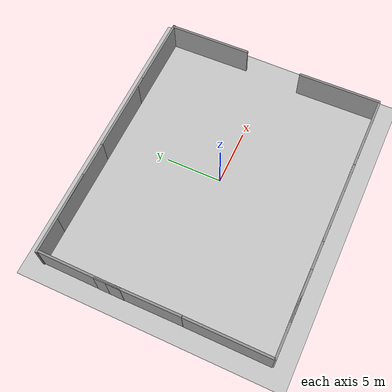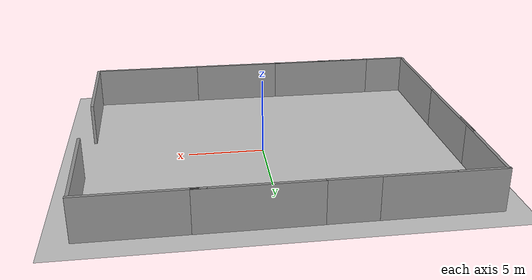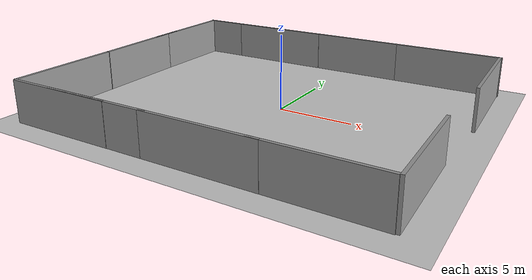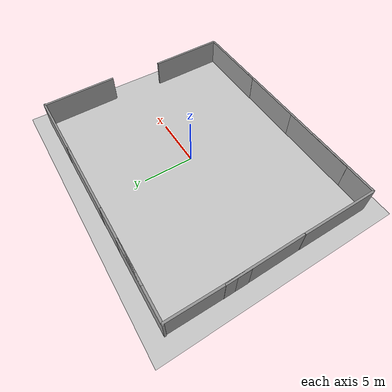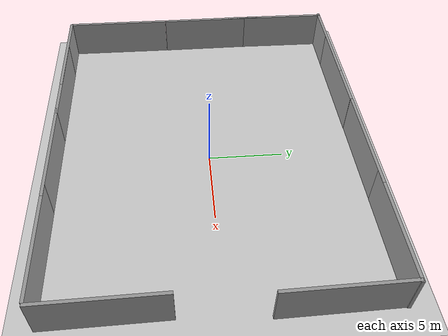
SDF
<sdf version="1.6">
 <world name="default">
  <light name="sun" type="directional">
   <pose>0 0 10 0 -0 0</pose>
   <diffuse>0.8 0.8 0.8 1</diffuse>
   <specular>0.1 0.1 0.1 1</specular>
   <attenuation>
    <range>1000</range>
    <constant>0.9</constant>
    <linear>0.01</linear>
    <quadratic>0.001</quadratic>
   </attenuation>
   <direction>-0.5 0.5 -1</direction>
  </light>
  <model name="ground_plane">
   <static>1</static>
   <link name="link">
    <collision name="collision">
     <geometry><plane><normal>0 0 1</normal><size>100 100</size></plane></geometry>
     <surface><friction><ode><mu>100</mu><mu2>50</mu2></ode></friction></surface>
    </collision>
    <visual name="visual">
     <cast_shadows>0</cast_shadows>
     <geometry><plane><normal>0 0 1</normal><size>100 100</size></plane></geometry>
     <material>
      <script><uri>file://media/materials/scripts/gazebo.material</uri><name>Gazebo/Grey</name></script>
     </material>
    </visual>
   </link>
  </model>
  <gravity>0 0 -9.8</gravity>
  <magnetic_field>6e-06 2.3e-05 -4.2e-05</magnetic_field>
  <atmosphere type="adiabatic"/>
  <physics name="default_physics" default="0" type="ode">
   <max_step_size>0.001</max_step_size>
   <real_time_factor>1</real_time_factor>
   <real_time_update_rate>1000</real_time_update_rate>
  </physics>
  <scene>
   <ambient>0.4 0.4 0.4 1</ambient>
   <background>0.7 0.7 0.7 1</background>
   <shadows>1</shadows>
   <sky><clouds><speed>100</speed></clouds></sky>
  </scene>
  <spherical_coordinates>
   <surface_model>EARTH_WGS84</surface_model>
   <latitude_deg>0</latitude_deg>
   <longitude_deg>0</longitude_deg>
   <elevation>0</elevation>
   <heading_deg>0</heading_deg>
  </spherical_coordinates>
  <light name="user_spot_light_0" type="spot">
   <pose>-6.13186 -0.973025 1 0 -0 0</pose>
   <diffuse>0.5 0.5 0.5 1</diffuse>
   <specular>0.1 0.1 0.1 1</specular>
   <direction>0 0 -1</direction>
   <attenuation>
    <range>20</range>
    <constant>0.5</constant>
    <linear>0.01</linear>
    <quadratic>0.001</quadratic>
   </attenuation>
   <cast_shadows>0</cast_shadows>
   <spot><inner_angle>0.6</inner_angle><outer_angle>1</outer_angle><falloff>1</falloff></spot>
  </light>
  <model name="grey_wall">
   <static>1</static>
   <link name="link">
    <pose>0 0 1.4 0 -0 0</pose>
    <collision name="collision"><geometry><box><size>7.5 0.2 2.8</size></box></geometry></collision>
    <visual name="visual">
     <cast_shadows>0</cast_shadows>
     <geometry><box><size>7.5 0.2 2.8</size></box></geometry>
     <material>
      <script>
       <uri>model://grey_wall/materials/scripts</uri>
       <uri>model://grey_wall/materials/textures</uri>
       <name>vrc/grey_wall</name>
      </script>
     </material>
    </visual>
   </link>
   <pose>-5.97926 9.97481 0 0 -0 0</pose>
  </model>
  <model name="grey_wall_0">
   <static>1</static>
   <link name="link">
    <pose>0 0 1.4 0 -0 0</pose>
    <collision name="collision"><geometry><box><size>7.5 0.2 2.8</size></box></geometry></collision>
    <visual name="visual">
     <cast_shadows>0</cast_shadows>
     <geometry><box><size>7.5 0.2 2.8</size></box></geometry>
     <material>
      <script>
       <uri>model://grey_wall/materials/scripts</uri>
       <uri>model://grey_wall/materials/textures</uri>
       <name>vrc/grey_wall</name>
      </script>
     </material>
    </visual>
   </link>
   <pose>1.45365 9.98971 0 0 -0 0</pose>
  </model>
  <model name="grey_wall_1">
   <static>1</static>
   <link name="link">
    <pose>0 0 1.4 0 -0 0</pose>
    <collision name="collision"><geometry><box><size>7.5 0.2 2.8</size></box></geometry></collision>
    <visual name="visual">
     <cast_shadows>0</cast_shadows>
     <geometry><box><size>7.5 0.2 2.8</size></box></geometry>
     <material>
      <script>
       <uri>model://grey_wall/materials/scripts</uri>
       <uri>model://grey_wall/materials/textures</uri>
       <name>vrc/grey_wall</name>
      </script>
     </material>
    </visual>
   </link>
   <pose>8.0048 9.98319 0 0 -0 0</pose>
  </model>
  <model name="grey_wall_2">
   <static>1</static>
   <link name="link">
    <pose>0 0 1.4 0 -0 0</pose>
    <collision name="collision"><geometry><box><size>7.5 0.2 2.8</size></box></geometry></collision>
    <visual name="visual">
     <cast_shadows>0</cast_shadows>
     <geometry><box><size>7.5 0.2 2.8</size></box></geometry>
     <material>
      <script>
       <uri>model://grey_wall/materials/scripts</uri>
       <uri>model://grey_wall/materials/textures</uri>
       <name>vrc/grey_wall</name>
      </script>
     </material>
    </visual>
   </link>
   <pose>-6.05558 -10.1508 0 0 -0 0</pose>
  </model>
  <model name="grey_wall_3">
   <static>1</static>
   <link name="link">
    <pose>0 0 1.4 0 -0 0</pose>
    <collision name="collision"><geometry><box><size>7.5 0.2 2.8</size></box></geometry></collision>
    <visual name="visual">
     <cast_shadows>0</cast_shadows>
     <geometry><box><size>7.5 0.2 2.8</size></box></geometry>
     <material>
      <script>
       <uri>model://grey_wall/materials/scripts</uri>
       <uri>model://grey_wall/materials/textures</uri>
       <name>vrc/grey_wall</name>
      </script>
     </material>
    </visual>
   </link>
   <pose>0.972077 -10.1518 0 0 -0 0</pose>
  </model>
  <model name="grey_wall_4">
   <static>1</static>
   <link name="link">
    <pose>0 0 1.4 0 -0 0</pose>
    <collision name="collision"><geometry><box><size>7.5 0.2 2.8</size></box></geometry></collision>
    <visual name="visual">
     <cast_shadows>0</cast_shadows>
     <geometry><box><size>7.5 0.2 2.8</size></box></geometry>
     <material>
      <script>
       <uri>model://grey_wall/materials/scripts</uri>
       <uri>model://grey_wall/materials/textures</uri>
       <name>vrc/grey_wall</name>
      </script>
     </material>
    </visual>
   </link>
   <pose>7.6726 -10.1449 0 0 -0 0</pose>
  </model>
  <model name="grey_wall_5">
   <static>1</static>
   <link name="link">
    <pose>0 0 1.4 0 -0 0</pose>
    <collision name="collision"><geometry><box><size>7.5 0.2 2.8</size></box></geometry></collision>
    <visual name="visual">
     <cast_shadows>0</cast_shadows>
     <geometry><box><size>7.5 0.2 2.8</size></box></geometry>
     <material>
      <script>
       <uri>model://grey_wall/materials/scripts</uri>
       <uri>model://grey_wall/materials/textures</uri>
       <name>vrc/grey_wall</name>
      </script>
     </material>
    </visual>
   </link>
   <pose>-12.7592 -6.39403 0 0 0 -1.57324</pose>
  </model>
  <model name="grey_wall_6">
   <static>1</static>
   <link name="link">
    <pose>0 0 1.4 0 -0 0</pose>
    <collision name="collision"><geometry><box><size>7.5 0.2 2.8</size></box></geometry></collision>
    <visual name="visual">
     <cast_shadows>0</cast_shadows>
     <geometry><box><size>7.5 0.2 2.8</size></box></geometry>
     <material>
      <script>
       <uri>model://grey_wall/materials/scripts</uri>
       <uri>model://grey_wall/materials/textures</uri>
       <name>vrc/grey_wall</name>
      </script>
     </material>
    </visual>
   </link>
   <pose>-12.7651 1.13567 0 0 -0 1.57742</pose>
  </model>
  <model name="grey_wall_7">
   <static>1</static>
   <link name="link">
    <pose>0 0 1.4 0 -0 0</pose>
    <collision name="collision"><geometry><box><size>7.5 0.2 2.8</size></box></geometry></collision>
    <visual name="visual">
     <cast_shadows>0</cast_shadows>
     <geometry><box><size>7.5 0.2 2.8</size></box></geometry>
     <material>
      <script>
       <uri>model://grey_wall/materials/scripts</uri>
       <uri>model://grey_wall/materials/textures</uri>
       <name>vrc/grey_wall</name>
      </script>
     </material>
    </visual>
   </link>
   <pose>-12.7607 6.30449 0 0 -0 1.56179</pose>
  </model>
  <model name="grey_wall_8">
   <static>1</static>
   <link name="link">
    <pose>0 0 1.4 0 -0 0</pose>
    <collision name="collision"><geometry><box><size>7.5 0.2 2.8</size></box></geometry></collision>
    <visual name="visual">
     <cast_shadows>0</cast_shadows>
     <geometry><box><size>7.5 0.2 2.8</size></box></geometry>
     <material>
      <script>
       <uri>model://grey_wall/materials/scripts</uri>
       <uri>model://grey_wall/materials/textures</uri>
       <name>vrc/grey_wall</name>
      </script>
     </material>
    </visual>
   </link>
   <pose>-9.05518 -10.1652 0 0 -0 0</pose>
  </model>
  <model name="grey_wall_9">
   <static>1</static>
   <link name="link">
    <pose>0 0 1.4 0 -0 0</pose>
    <collision name="collision"><geometry><box><size>7.5 0.2 2.8</size></box></geometry></collision>
    <visual name="visual">
     <cast_shadows>0</cast_shadows>
     <geometry><box><size>7.5 0.2 2.8</size></box></geometry>
     <material>
      <script>
       <uri>model://grey_wall/materials/scripts</uri>
       <uri>model://grey_wall/materials/textures</uri>
       <name>vrc/grey_wall</name>
      </script>
     </material>
    </visual>
   </link>
   <pose>-9.15158 9.97877 0 0 -0 0</pose>
  </model>
  <model name="grey_wall_11">
   <static>1</static>
   <link name="link">
    <pose>0 0 1.4 0 -0 0</pose>
    <collision name="collision"><geometry><box><size>7.5 0.2 2.8</size></box></geometry></collision>
    <visual name="visual">
     <cast_shadows>0</cast_shadows>
     <geometry><box><size>7.5 0.2 2.8</size></box></geometry>
     <material>
      <script>
       <uri>model://grey_wall/materials/scripts</uri>
       <uri>model://grey_wall/materials/textures</uri>
       <name>vrc/grey_wall</name>
      </script>
     </material>
    </visual>
   </link>
   <pose>11.461 -6.4357 0 0 -0 1.5874</pose>
  </model>
  <model name="grey_wall_12">
   <static>1</static>
   <link name="link">
    <pose>0 0 1.4 0 -0 0</pose>
    <collision name="collision"><geometry><box><size>7.5 0.2 2.8</size></box></geometry></collision>
    <visual name="visual">
     <cast_shadows>0</cast_shadows>
     <geometry><box><size>7.5 0.2 2.8</size></box></geometry>
     <material>
      <script>
       <uri>model://grey_wall/materials/scripts</uri>
       <uri>model://grey_wall/materials/textures</uri>
       <name>vrc/grey_wall</name>
      </script>
     </material>
    </visual>
   </link>
   <pose>11.6722 6.28425 0 0 -0 1.58931</pose>
  </model>
 </world>
</sdf>
